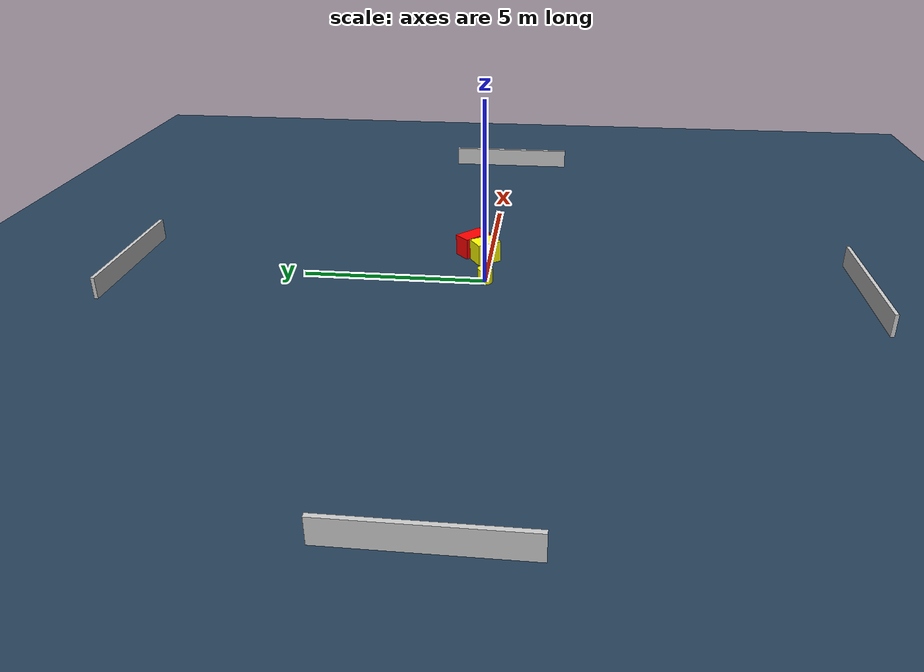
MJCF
<?xml version="1.0" ?>
<mujoco model="generated_environment">
  <option timestep="0.01" integrator="RK4" cone="elliptic"/>
  <default>
    <geom density="1"/>
  </default>
  <asset>
    <texture builtin="gradient" height="3072" name="skybox" rgb1="0.3 0.5 0.7" rgb2="0 0 0" type="skybox" width="512"/>
    <texture builtin="checker" height="300" name="groundplane" rgb1="0.2 0.3 0.4" rgb2="0.1 0.2 0.3" type="2d" width="300"/>
    <material name="groundplane" reflectance="0.2" texrepeat="5 5" texture="groundplane"/>
  </asset>
  <worldbody>
    <light dir="0 0 -1" directional="true" pos="0 0 1.5"/>
    <geom condim="3" friction="0.5 0.005 0.001" material="groundplane" name="floor" pos="0 0 0" size="0 0 0.05" type="plane"/>
    <body name="walls">
      <geom name="wall_1" condim="4" pos="-10.0 0.0 0.3" rgba="0.800000011920929 0.800000011920929 0.800000011920929 1.0" size="0.05 2.0 0.3" type="box"/>
      <geom name="wall_2" condim="4" pos="10.0 0.0 0.3" rgba="0.800000011920929 0.800000011920929 0.800000011920929 1.0" size="0.05 2.0 0.3" type="box"/>
      <geom name="wall_3" condim="4" pos="0.0 -10.0 0.3" rgba="0.800000011920929 0.800000011920929 0.800000011920929 1.0" size="2.0 0.05 0.3" type="box"/>
      <geom name="wall_4" condim="4" pos="0.0 10.0 0.3" rgba="0.800000011920929 0.800000011920929 0.800000011920929 1.0" size="2.0 0.05 0.3" type="box"/>
    </body>
    <body name="robot">
      <joint name="joint_x" type="slide" pos="0 0 0" axis="1 0 0"/>
      <joint name="joint_y" type="slide" pos="0 0 0" axis="0 1 0"/>
      <geom name="robot" type="cylinder" pos="0.0 0.0 0.2" size="0.2 0.2 0.0" mass="5.0" friction="1.0 0.005 0.0001" condim="4" rgba="1.0 1.0 0.0 1.0"/>
    </body>
    <body name="obstacle_1_movable">
      <geom name="obstacle_1_movable" condim="4" pos="1.4014400819457107 0.13694936973208524 0.3" euler="0 0 303.68769312825026" friction="0.0 0.005 0.001" rgba="1.0 1.0 0.0 1.0" size="0.3494453734689813 0.2720065550709564 0.3" type="box" mass="0.1"/>
      <joint type="free"/>
    </body>
    <body name="obstacle_2_static">
      <geom name="obstacle_2_static" condim="4" pos="1.8513391915286561 0.5361619762745637 0.3" euler="0 0 134.61064117071132" friction="0.0 0.005 0.001" rgba="1.0 0.0 0.0 1.0" size="0.4221513229998424 0.25208859618659585 0.3" type="box"/>
    </body>
  </worldbody>
  <actuator>
    <motor name="actuator_x" joint="joint_x" gear="1" ctrlrange="-1 1"/>
    <motor name="actuator_y" joint="joint_y" gear="1" ctrlrange="-1 1"/>
  </actuator>
</mujoco>
